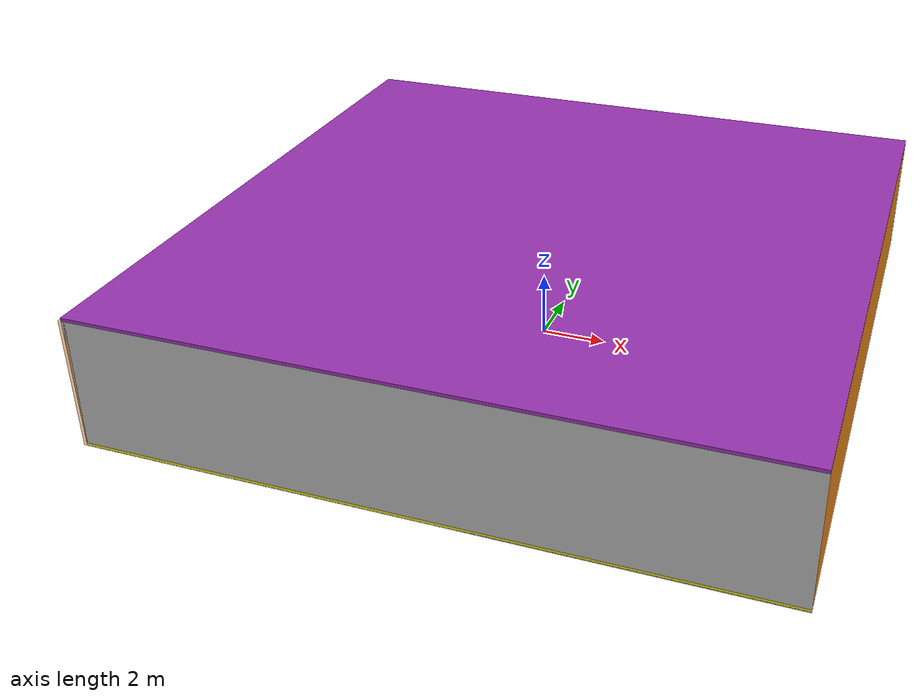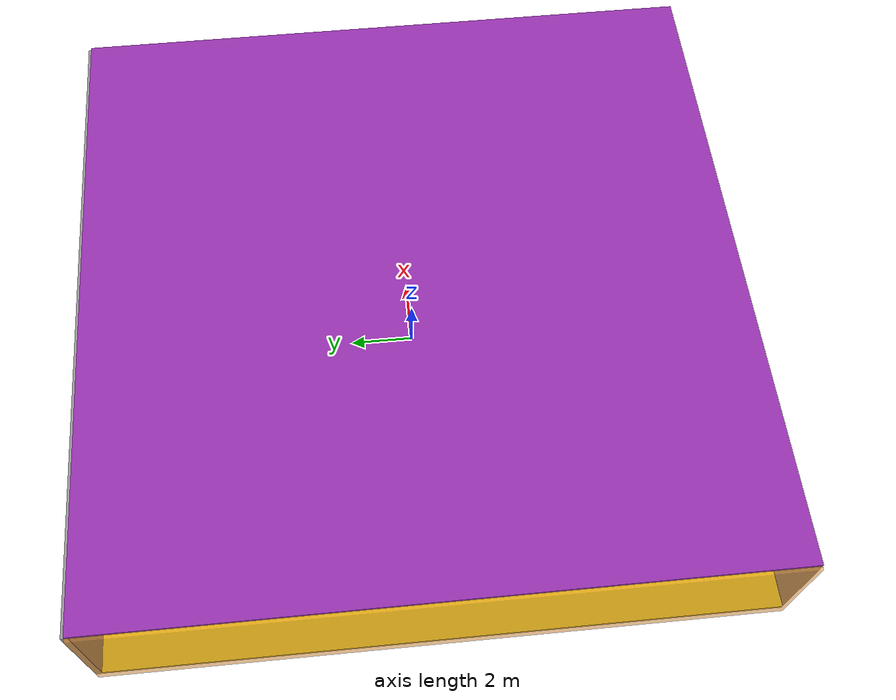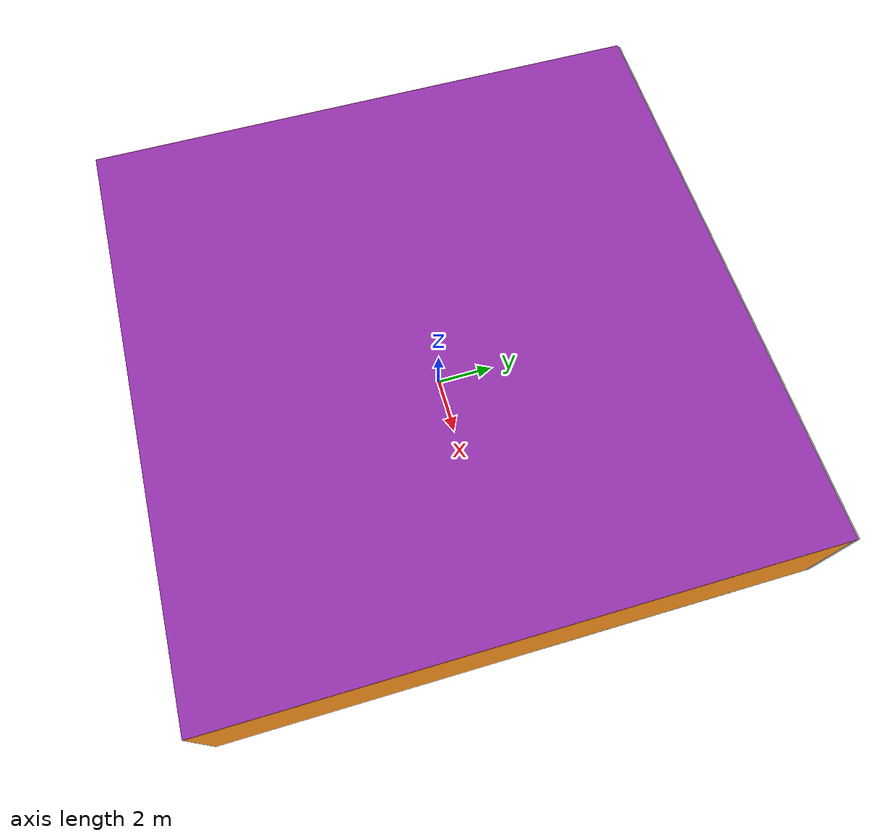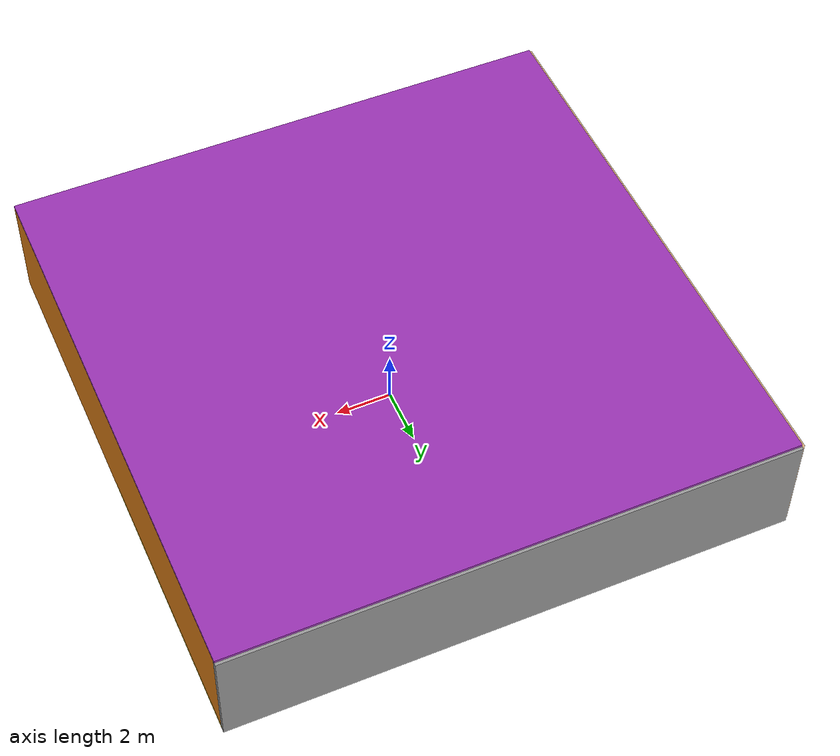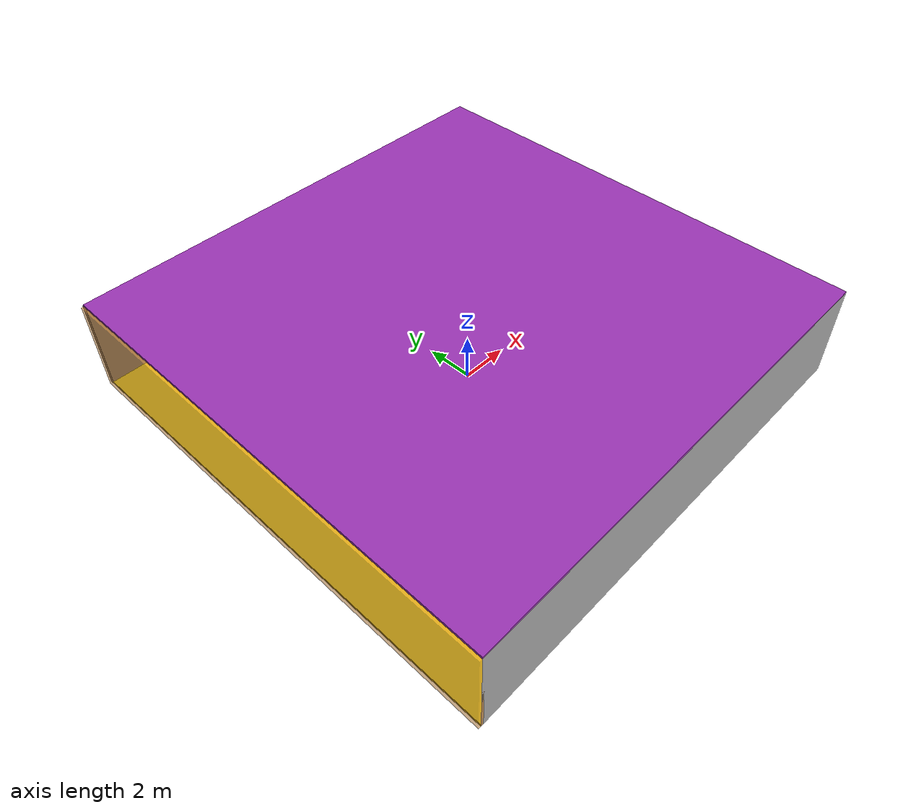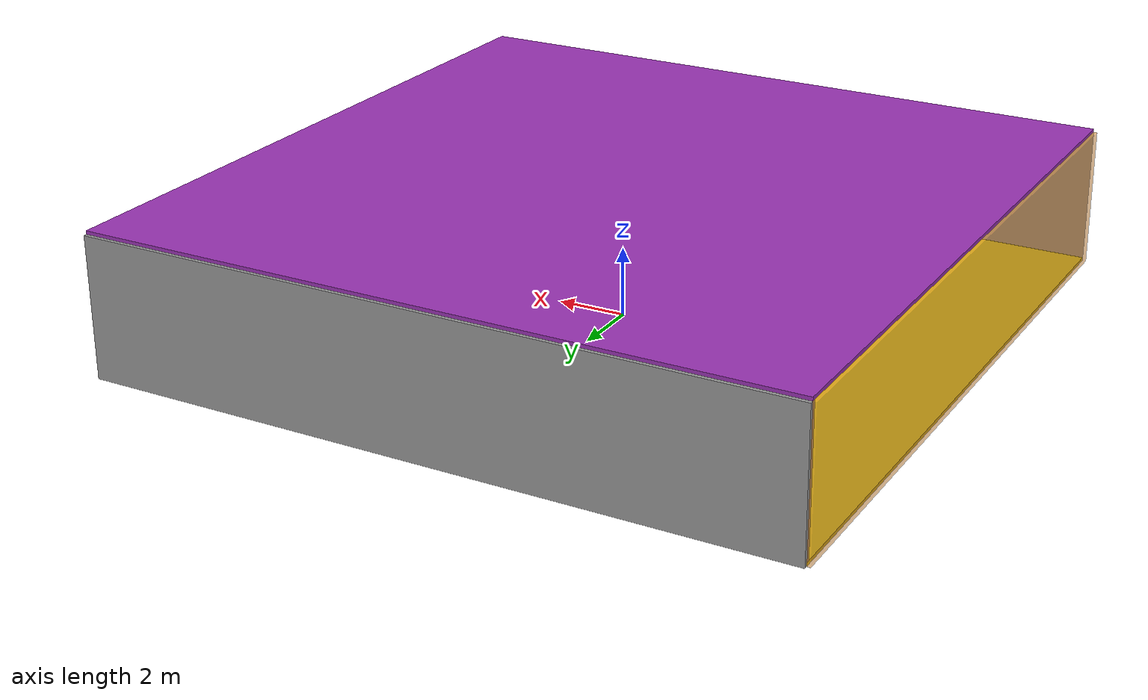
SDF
<sdf version="1.4">
 <world name="default">
  <physics type="ode">
   <max_step_size>0.001</max_step_size>
   <real_time_factor>1</real_time_factor>
   <real_time_update_rate>1000</real_time_update_rate>
   <gravity>0 0 -9.8</gravity>
  </physics>
  <scene><ambient>0.4 0.4 0.4 1</ambient><background>0.7 0.7 0.7 1</background><shadows>1</shadows></scene>
  <model name="Surrounding">
   <static>1</static>
   <link name="Ceiling">
    <collision name="Ceiling_Collision"><geometry><box><size>20 20 0.1</size></box></geometry></collision>
    <visual name="Ceiling_Visual">
     <geometry><box><size>20 20 0.1</size></box></geometry>
     <material>
      <script><uri>file://media/materials/scripts/gazebo.material</uri><name>Gazebo/Purple</name></script>
     </material>
    </visual>
    <pose>0 0 4.05 0 0 0</pose>
   </link>
   <link name="Wall_South">
    <collision name="Wall_South_Collision">
     <geometry><box><size>20 0 4</size></box></geometry>
     <pose>0 0 2 0 -0 0</pose>
    </collision>
    <visual name="Wall_South_Visual">
     <pose>0 0 2 0 -0 0</pose>
     <geometry><box><size>20 0 4</size></box></geometry>
     <material>
      <script><uri>file://media/materials/scripts/gazebo.material</uri><name>Gazebo/CloudySky</name></script>
     </material>
    </visual>
    <velocity_decay><linear>0</linear><angular>0</angular></velocity_decay>
    <pose>0 -10 0 0 -0 0</pose>
   </link>
   <link name="Wall_East">
    <collision name="Wall_21_Collision">
     <geometry><box><size>20 0 4</size></box></geometry>
     <pose>0 0 2 0 -0 0</pose>
    </collision>
    <visual name="Wall_21_Visual">
     <pose>0 0 2 0 -0 0</pose>
     <geometry><box><size>20 0 4</size></box></geometry>
     <material>
      <script><uri>file://media/materials/scripts/gazebo.material</uri><name>Gazebo/Orange</name></script>
     </material>
    </visual>
    <velocity_decay><linear>0</linear><angular>0</angular></velocity_decay>
    <pose>10 0 0 0 -0 1.5708</pose>
   </link>
   <link name="Wall_North">
    <collision name="Wall_22_Collision">
     <geometry><box><size>20 0.2 4</size></box></geometry>
     <pose>0 0 2 0 -0 0</pose>
    </collision>
    <visual name="Wall_22_Visual">
     <pose>0 0 2 0 -0 0</pose>
     <geometry><box><size>20 0.2 4</size></box></geometry>
     <material>
      <script><uri>file://media/materials/scripts/gazebo.material</uri><name>Gazebo/Grey</name></script>
     </material>
    </visual>
    <velocity_decay><linear>0</linear><angular>0</angular></velocity_decay>
    <pose>0 10 0 0 -0 0</pose>
   </link>
   <link name="Wall_West">
    <collision name="Wall_23_Collision">
     <geometry><box><size>20 0.2 4</size></box></geometry>
     <pose>0 0 2 0 -0 0</pose>
    </collision>
    <visual name="Wall_23_Visual">
     <pose>0 0 2 0 -0 0</pose>
     <geometry><box><size>20 0.2 4</size></box></geometry>
     <material>
      <script>
       <uri>file://media/materials/scripts/gazebo.material</uri>
       <name>Gazebo/OrangeTransparent</name>
      </script>
     </material>
    </visual>
    <velocity_decay><linear>0</linear><angular>0</angular></velocity_decay>
    <pose>-10 0 0 0 0 -1.5708</pose>
   </link>
   <link name="Ground_link">
    <collision name="collision">
     <pose>0 0 .05 0 -0 0</pose>
     <geometry><box><size>20 20 0.1</size></box></geometry>
    </collision>
    <visual name="visual">
     <pose>0 0 .05 0 -0 0</pose>
     <geometry><box><size>20 20 0.1</size></box></geometry>
     <material>
      <script><uri>file://media/materials/scripts/gazebo.material</uri><name>Gazebo/YellowGlow</name></script>
     </material>
    </visual>
   </link>
   <static>1</static>
  </model>
  <spherical_coordinates>
   <surface_model>EARTH_WGS84</surface_model>
   <latitude_deg>0</latitude_deg>
   <longitude_deg>0</longitude_deg>
   <elevation>0</elevation>
   <heading_deg>0</heading_deg>
  </spherical_coordinates>
  <light name="lightball_0" type="diffuse">
   <diffuse>0.8 0.8 0.8 1</diffuse>
   <specular>0.2 0.2 0.2 1</specular>
   <attenuation>
    <range>100</range>
    <constant>0.7</constant>
    <linear>0.01</linear>
    <quadratic>0.001</quadratic>
   </attenuation>
   <direction>-0.5 0.1 -0.9</direction>
   <pose>-8.02501934898 1.33319263207 3.39007862579 0 0 0</pose>
  </light>
  <light name="lightball_1" type="diffuse">
   <diffuse>0.8 0.8 0.8 1</diffuse>
   <specular>0.2 0.2 0.2 1</specular>
   <attenuation>
    <range>100</range>
    <constant>0.7</constant>
    <linear>0.01</linear>
    <quadratic>0.001</quadratic>
   </attenuation>
   <direction>-0.5 0.1 -0.9</direction>
   <pose>-7.74682306202 -1.33539434064 0.937708497749 0 0 0</pose>
  </light>
  <light name="lightball_2" type="diffuse">
   <diffuse>0.8 0.8 0.8 1</diffuse>
   <specular>0.2 0.2 0.2 1</specular>
   <attenuation>
    <range>100</range>
    <constant>0.7</constant>
    <linear>0.01</linear>
    <quadratic>0.001</quadratic>
   </attenuation>
   <direction>-0.5 0.1 -0.9</direction>
   <pose>1.08592679085 -8.8967838536 2.06188027881 0 0 0</pose>
  </light>
  <light name="lightball_3" type="diffuse">
   <diffuse>0.8 0.8 0.8 1</diffuse>
   <specular>0.2 0.2 0.2 1</specular>
   <attenuation>
    <range>100</range>
    <constant>0.7</constant>
    <linear>0.01</linear>
    <quadratic>0.001</quadratic>
   </attenuation>
   <direction>-0.5 0.1 -0.9</direction>
   <pose>-9.78416103747 -6.15413874175 3.84653111149 0 0 0</pose>
  </light>
  <light name="lightball_4" type="diffuse">
   <diffuse>0.8 0.8 0.8 1</diffuse>
   <specular>0.2 0.2 0.2 1</specular>
   <attenuation>
    <range>100</range>
    <constant>0.7</constant>
    <linear>0.01</linear>
    <quadratic>0.001</quadratic>
   </attenuation>
   <direction>-0.5 0.1 -0.9</direction>
   <pose>8.93563680991 9.66725263356 0.869264534517 0 0 0</pose>
  </light>
  <include><uri>model://cabinet</uri><pose>1.88076624521 1.36384012284 0 0 0 1.03568398749</pose></include>
  <include>
   <uri>model://robocup_3Dsim_goal</uri>
   <pose>4.23319130743 -7.5835901655 0 0 0 2.27531771323</pose>
  </include>
  <include>
   <uri>model://construction_cone</uri>
   <pose>7.00087342152 -6.85110606651 0 0 0 1.31552143458</pose>
  </include>
 </world>
</sdf>

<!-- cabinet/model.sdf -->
<sdf version="1.5">
  <model name="cabinet">
    <static>true</static>
    <link name="cabinet_bottom_plate">
      <inertial>
        <pose>0 0 -1 0 0 0</pose>
        <inertia>
          <ixx>2.050000</ixx>
          <ixy>0</ixy>
          <ixz>0</ixz>
          <iyy>2.050000</iyy>
          <iyz>0</iyz>
          <izz>2.050000</izz>
        </inertia>
        <mass>25.000000</mass>
      </inertial>
      <collision name="cabinet_bottom_plate_geom">
        <pose>0 0 0.010000 0 0 0</pose>
        <geometry>
          <box>
            <size>0.450000 0.450000 0.020000</size>
          </box>
        </geometry>
      </collision>
      <visual name="cabinet_bottom_plate_geom_visual">
        <pose>0 0 0.010000 0 0 0</pose>
        <geometry>
          <box>
            <size>0.450000 0.450000 0.020000</size>
          </box>
        </geometry>
        <material>
          <script>
            <uri>model://media/materials/scripts/gazebo.material</uri>
            <name>Gazebo/Wood</name>
          </script>
        </material>
      </visual>
      <collision name="cabinet_bottom_plate_geom_cabinet_back_plate">
        <pose>0.235000 0 0.510000 0 0 0</pose>
        <geometry>
          <box>
            <size>0.020000 0.450000 1.020000</size>
          </box>
        </geometry>
      </collision>
      <visual name="cabinet_bottom_plate_geom_cabinet_back_plate_visual">
        <pose>0.235000 0 0.510000 0 0 0</pose>
        <geometry>
          <box>
            <size>0.020000 0.450000 1.020000</size>
          </box>
        </geometry>
        <material>
          <script>
            <uri>model://media/materials/scripts/gazebo.material</uri>
            <name>Gazebo/Wood</name>
          </script>
        </material>
      </visual>
      <collision name="cabinet_bottom_plate_geom_cabinet_left_plate">
        <pose>0 0.235000 0.510000 0 0 0</pose>
        <geometry>
          <box>
            <size>0.450000 0.020000 1.020000</size>
          </box>
        </geometry>
      </collision>
      <visual name="cabinet_bottom_plate_geom_cabinet_left_plate_visual">
        <pose>0 0.235000 0.510000 0 0 0</pose>
        <geometry>
          <box>
            <size>0.450000 0.020000 1.020000</size>
          </box>
        </geometry>
        <material>
          <script>
            <uri>model://media/materials/scripts/gazebo.material</uri>
            <name>Gazebo/Wood</name>
          </script>
        </material>
      </visual>
      <collision name="cabinet_bottom_plate_geom_cabinet_middle_plate">
        <pose>0 0 0.510000 0 0 0</pose>
        <geometry>
          <box>
            <size>0.450000 0.450000 0.020000</size>
          </box>
        </geometry>
      </collision>
      <visual name="cabinet_bottom_plate_geom_cabinet_middle_plate_visual">
        <pose>0 0 0.510000 0 0 0</pose>
        <geometry>
          <box>
            <size>0.450000 0.450000 0.020000</size>
          </box>
        </geometry>
        <material>
          <script>
            <uri>model://media/materials/scripts/gazebo.material</uri>
            <name>Gazebo/Wood</name>
          </script>
        </material>
      </visual>
      <collision name="cabinet_bottom_plate_geom_cabinet_right_plate">
        <pose>0 -0.235000 0.510000 0 0 0</pose>
        <geometry>
          <box>
            <size>0.450000 0.020000 1.020000</size>
          </box>
        </geometry>
      </collision>
      <visual name="cabinet_bottom_plate_geom_cabinet_right_plate_visual">
        <pose>0 -0.235000 0.510000 0 0 0</pose>
        <geometry>
          <box>
            <size>0.450000 0.020000 1.020000</size>
          </box>
        </geometry>
        <material>
          <script>
            <uri>model://media/materials/scripts/gazebo.material</uri>
            <name>Gazebo/Wood</name>
          </script>
        </material>
      </visual>
      <collision name="cabinet_bottom_plate_geom_cabinet_top_plate">
        <pose>0 0 1.010000 0 0 0</pose>
        <geometry>
          <box>
            <size>0.450000 0.450000 0.020000</size>
          </box>
        </geometry>
      </collision>
      <visual name="cabinet_bottom_plate_geom_cabinet_top_plate_visual">
        <pose>0 0 1.010000 0 0 0</pose>
        <geometry>
          <box>
            <size>0.450000 0.450000 0.020000</size>
          </box>
        </geometry>
        <material>
          <script>
            <uri>model://media/materials/scripts/gazebo.material</uri>
            <name>Gazebo/Wood</name>
          </script>
        </material>
      </visual>
    </link>
  </model>
</sdf>

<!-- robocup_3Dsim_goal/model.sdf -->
<sdf version="1.5">
  <model name="robocup_3d_goal">
    <static>true</static>
    <link name="left_post">
      <pose>0 1.05 0.45 0 0 0</pose>
      <collision name="collision">
        <geometry>
          <cylinder>
            <radius>0.05</radius>
            <length>0.9</length>
          </cylinder>
        </geometry>
      </collision>
      <visual name="visual">
        <geometry>
          <cylinder>
            <radius>0.05</radius>
            <length>0.9</length>
          </cylinder>
        </geometry>
        <material>
          <script>
            <uri>file://media/materials/scripts/gazebo.material</uri>
            <name>Gazebo/ZincYellow</name>
          </script>
        </material>
      </visual>
    </link>
    <link name="left_support_horiz_lower">
      <pose>0.30 1.05 0.01 0 0 0</pose>
      <collision name="collision">
        <geometry>
          <box>
            <size>0.50 0.02 0.02</size>
          </box>
        </geometry>
      </collision>
      <visual name="visual">
        <geometry>
          <box>
            <size>0.50 0.02 0.02</size>
          </box>
        </geometry>
        <material>
          <script>
            <uri>file://media/materials/scripts/gazebo.material</uri>
            <name>Gazebo/White</name>
          </script>
        </material>
      </visual>
    </link>
    <link name="left_support_horiz_upper">
      <pose>0.30 1.05 0.79 0 0 0</pose>
      <collision name="collision">
        <geometry>
          <box>
            <size>0.50 0.02 0.02</size>
          </box>
        </geometry>
      </collision>
      <visual name="visual">
        <geometry>
          <box>
            <size>0.50 0.02 0.02</size>
          </box>
        </geometry>
        <material>
          <script>
            <uri>file://media/materials/scripts/gazebo.material</uri>
            <name>Gazebo/White</name>
          </script>
        </material>
      </visual>
    </link>
    <link name="left_support_vertical">
      <pose>0.56 1.05 0.4 0 1.5708 0</pose>
      <collision name="collision">
        <geometry>
          <box>
            <size>0.80 0.02 0.02</size>
          </box>
        </geometry>
      </collision>
      <visual name="visual">
        <geometry>
          <box>
            <size>0.80 0.02 0.02</size>
          </box>
        </geometry>
        <material>
          <script>
            <uri>file://media/materials/scripts/gazebo.material</uri>
            <name>Gazebo/White</name>
          </script>
        </material>
      </visual>
    </link>
    <link name="right_support_horiz_lower">
      <pose>0.30 -1.05 0.01 0 0 0</pose>
      <collision name="collision">
        <geometry>
          <box>
            <size>0.50 0.02 0.02</size>
          </box>
        </geometry>
      </collision>
      <visual name="visual">
        <geometry>
          <box>
            <size>0.50 0.02 0.02</size>
          </box>
        </geometry>
        <material>
          <script>
            <uri>file://media/materials/scripts/gazebo.material</uri>
            <name>Gazebo/White</name>
          </script>
        </material>
      </visual>
    </link>
    <link name="right_support_horiz_upper">
      <pose>0.30 -1.05 0.79 0 0 0</pose>
      <collision name="collision">
        <geometry>
          <box>
            <size>0.50 0.02 0.02</size>
          </box>
        </geometry>
      </collision>
      <visual name="visual">
        <geometry>
          <box>
            <size>0.50 0.02 0.02</size>
          </box>
        </geometry>
        <material>
          <script>
            <uri>file://media/materials/scripts/gazebo.material</uri>
            <name>Gazebo/White</name>
          </script>
        </material>
      </visual>
    </link>
    <link name="right_support_vertical">
      <pose>0.56 -1.05 0.4 0 1.5708 0</pose>
      <collision name="collision">
        <geometry>
          <box>
            <size>0.80 0.02 0.02</size>
          </box>
        </geometry>
      </collision>
      <visual name="visual">
        <geometry>
          <box>
            <size>0.80 0.02 0.02</size>
          </box>
        </geometry>
        <material>
          <script>
            <uri>file://media/materials/scripts/gazebo.material</uri>
            <name>Gazebo/White</name>
          </script>
        </material>
      </visual>
    </link>
    <link name="center_support_horiz_lower">
      <pose>0.56 0 0.01 0 1.5708 0</pose>
      <collision name="collision">
        <geometry>
          <box>
            <size>0.02 2.08 0.02</size>
          </box>
        </geometry>
      </collision>
      <visual name="visual">
        <geometry>
          <box>
            <size>0.02 2.08 0.02</size>
          </box>
        </geometry>
        <material>
          <script>
            <uri>file://media/materials/scripts/gazebo.material</uri>
            <name>Gazebo/White</name>
          </script>
        </material>
      </visual>
    </link>
    <link name="center_support_horiz_upper">
      <pose>0.56 0 0.79 0 1.5708 0</pose>
      <collision name="collision">
        <geometry>
          <box>
            <size>0.02 2.08 0.02</size>
          </box>
        </geometry>
      </collision>
      <visual name="visual">
        <geometry>
          <box>
            <size>0.02 2.08 0.02</size>
          </box>
        </geometry>
        <material>
          <script>
            <uri>file://media/materials/scripts/gazebo.material</uri>
            <name>Gazebo/White</name>
          </script>
        </material>
      </visual>
    </link>
    <link name="right_post">
      <pose>0 -1.05 0.45 0 0 0</pose>
      <collision name="collision">
        <geometry>
          <cylinder>
            <radius>0.05</radius>
            <length>0.9</length>
          </cylinder>
        </geometry>
      </collision>
      <visual name="visual">
        <geometry>
          <cylinder>
            <radius>0.05</radius>
            <length>0.9</length>
          </cylinder>
        </geometry>
        <material>
          <script>
            <uri>file://media/materials/scripts/gazebo.material</uri>
            <name>Gazebo/ZincYellow</name>
          </script>
        </material>
      </visual>
    </link>
    <link name="crossbar">
      <pose>0 0 0.85 1.57 1.57 0</pose>
      <collision name="collision">
        <geometry>
          <cylinder>
            <radius>0.05</radius>
            <length>2.0</length>
          </cylinder>
        </geometry>
      </collision>
      <visual name="visual">
        <geometry>
          <cylinder>
            <radius>0.05</radius>
            <length>2.0</length>
          </cylinder>
        </geometry>
        <material>
          <script>
            <uri>file://media/materials/scripts/gazebo.material</uri>
            <name>Gazebo/ZincYellow</name>
          </script>
        </material>
      </visual>
    </link>
    <link name="center_net">
      <pose>0.56 0 0.40 0 0 0</pose>
      <collision name="collision">
        <geometry>
          <box>
            <size>0.01 2.1 0.80</size>
          </box>
        </geometry>
      </collision>
      <visual name="visual">
        <geometry>
          <box>
            <size>0.01 2.1 0.80</size>
          </box>
        </geometry>
        <material>
          <script>
            <uri>model://../model_source/models/robocup09_spl_field/materials/scripts/</uri>
            <uri>model://../model_source/models/robocup09_spl_field/materials/textures/</uri>
            <name>RoboCup/Net</name>
          </script>
        </material>
      </visual>
    </link>
    <link name="left_net">
      <pose>0.30 1.05 0.40 0 0 0</pose>
      <collision name="collision">
        <geometry>
          <box>
            <size>0.50 0.01 0.76</size>
          </box>
        </geometry>
      </collision>
      <visual name="visual">
        <geometry>
          <box>
            <size>0.50 0.01 0.76</size>
          </box>
        </geometry>
        <material>
          <script>
            <uri>model://../model_source/models/robocup09_spl_field/materials/scripts/</uri>
            <uri>model://../model_source/models/robocup09_spl_field/materials/textures/</uri>
            <name>RoboCup/Net</name>
          </script>
        </material>
      </visual>
    </link>
    <link name="right_net">
      <pose>0.30 -1.05 0.40 0 0 0</pose>
      <collision name="collision">
        <geometry>
          <box>
            <size>0.50 0.01 0.76</size>
          </box>
        </geometry>
      </collision>
      <visual name="visual">
        <geometry>
          <box>
            <size>0.50 0.01 0.76</size>
          </box>
        </geometry>
        <material>
          <script>
            <uri>model://../model_source/models/robocup09_spl_field/materials/scripts/</uri>
            <uri>model://../model_source/models/robocup09_spl_field/materials/textures/</uri>
            <name>RoboCup/Net</name>
          </script>
        </material>
      </visual>
    </link>
  </model>
</sdf>

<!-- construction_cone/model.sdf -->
<sdf version="1.5">
  <model name="Construction Cone">
    <link name="link">
      <collision name="collision">
        <geometry>
          <mesh>
            <scale>10 10 10</scale>
            <uri>file://isr-testbed/construction_cone/meshes/construction_cone.dae</uri>
          </mesh>
        </geometry>
      </collision>
      <visual name="visual">
        <geometry>
          <mesh>
            <scale>10 10 10</scale>
            <uri>file://isr-testbed/construction_cone/meshes/construction_cone.dae</uri>
          </mesh>
        </geometry>
      </visual>
    </link>
  </model>
</sdf>
